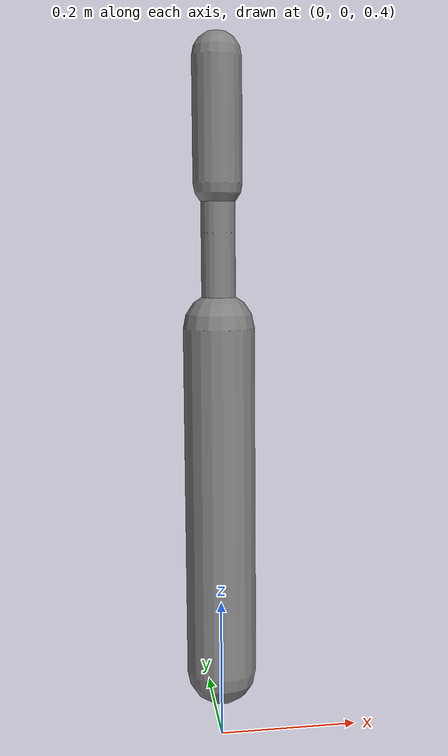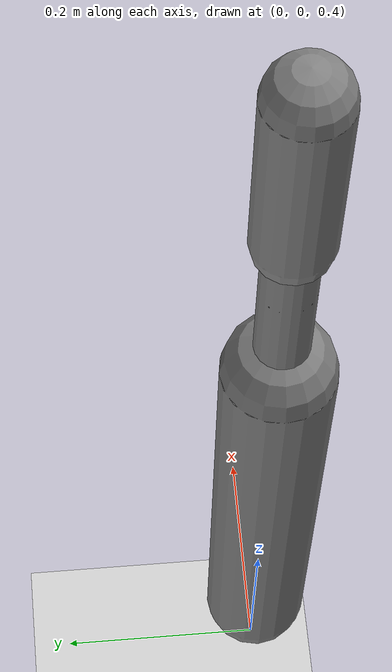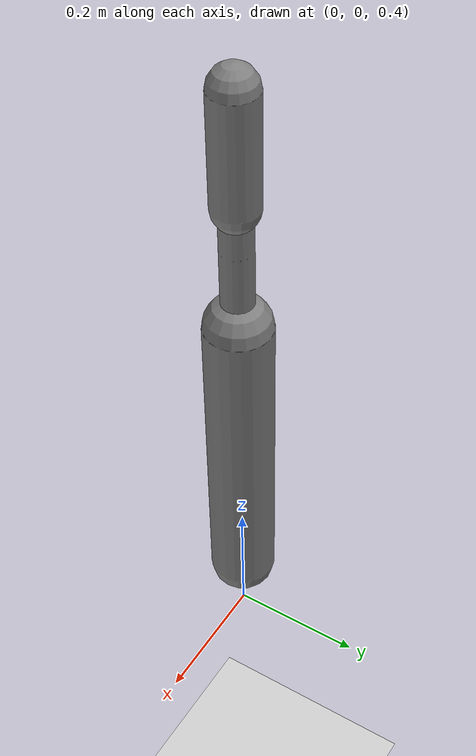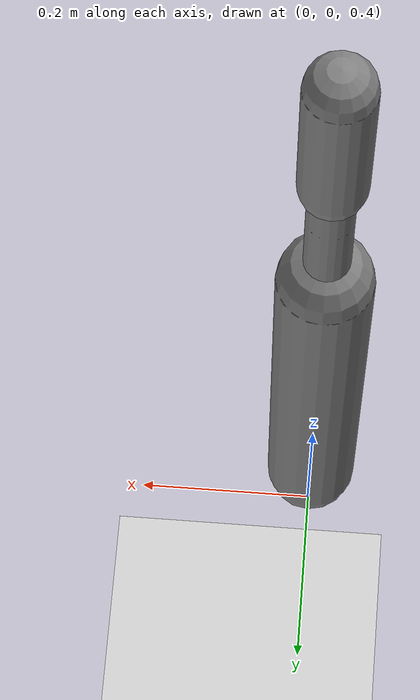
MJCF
<?xml version='1.0' encoding='UTF-8'?>
<mujoco model="RobotModel">
  <option gravity="0 0 -9.81" timestep="0.002" solver="CG" iterations="500" integrator="Euler"/>
  <worldbody>
    <geom name="Floor" type="plane" size="10 10 0.1" pos="0 0 0" rgba="0.8 0.8 0.8 1"/>
    <body name="Limb0" pos="0 0 0.5">
      <geom type="capsule" fromto="0 0 0 0 0 0.5" size="0.05" density="1000" contype="0" conaffinity="0"/>
      <body name="Limb0_ea3794a7" pos="0 0 0.5">
        <geom type="capsule" fromto="0 0 0 0 0 0.13134792540893056" size="0.02364809594730607" density="800" contype="0" conaffinity="0"/>
        <body name="Limb1_ea3794a7" pos="0 0 0.13134792540893056">
          <geom type="capsule" fromto="0 0 0 0 0 0.11425145318574509" size="0.022312145174088395" density="800" contype="0" conaffinity="0"/>
          <joint name="Joint_Limb0_ea3794a7_Limb1_ea3794a7_0" type="hinge" axis="0 1 0" range="-60 60"/>
        </body>
        <body name="Limb2_ea3794a7" pos="0 0 0.13134792540893056">
          <geom type="capsule" fromto="0 0 0 0 0 0.1756442683437526" size="0.023522148000218644" density="800" contype="0" conaffinity="0"/>
          <joint name="Joint_Limb0_ea3794a7_Limb2_ea3794a7_0" type="hinge" axis="1 0 0" range="-60 60"/>
        </body>
        <joint name="Joint_Limb0_Limb0_ea3794a7_0" type="hinge" axis="0 1 0" range="-60 60"/>
      </body>
      <body name="Limb3_ea3794a7" pos="0 0 0.5">
        <geom type="capsule" fromto="0 0 0 0 0 0.19816652191281" size="0.023785270592978698" density="800" contype="0" conaffinity="0"/>
        <body name="Limb4_ea3794a7" pos="0 0 0.19816652191281">
          <geom type="capsule" fromto="0 0 0 0 0 0.16858029888185463" size="0.03411795147999237" density="800" contype="0" conaffinity="0"/>
          <joint name="Joint_Limb3_ea3794a7_Limb4_ea3794a7_0" type="hinge" axis="0 1 0" range="-60 60"/>
        </body>
        <joint name="Joint_Limb0_Limb3_ea3794a7_0" type="hinge" axis="1 0 0" range="-60 60"/>
      </body>
    </body>
  </worldbody>
  <actuator>
    <position name="position_Actuator_Joint_Limb0_Limb0_ea3794a7_0" joint="Joint_Limb0_Limb0_ea3794a7_0" gear="1.0"/>
    <position name="position_Actuator_Joint_Limb0_ea3794a7_Limb1_ea3794a7_0" joint="Joint_Limb0_ea3794a7_Limb1_ea3794a7_0" gear="1.0"/>
    <position name="position_Actuator_Joint_Limb0_ea3794a7_Limb2_ea3794a7_0" joint="Joint_Limb0_ea3794a7_Limb2_ea3794a7_0" gear="1.0"/>
    <position name="position_Actuator_Joint_Limb0_Limb3_ea3794a7_0" joint="Joint_Limb0_Limb3_ea3794a7_0" gear="1.0"/>
    <position name="position_Actuator_Joint_Limb3_ea3794a7_Limb4_ea3794a7_0" joint="Joint_Limb3_ea3794a7_Limb4_ea3794a7_0" gear="1.0"/>
  </actuator>
</mujoco>
